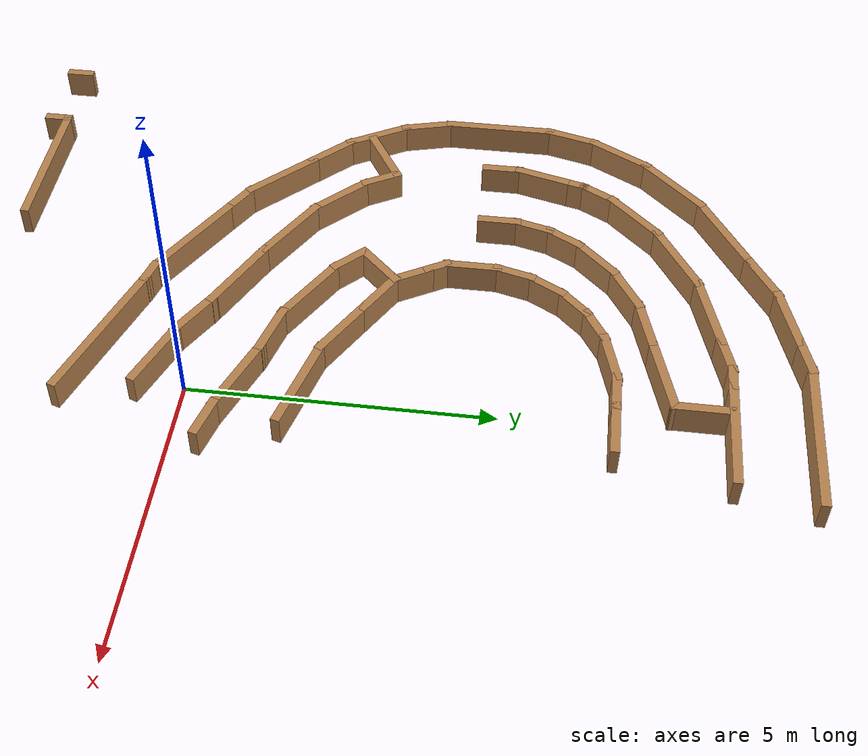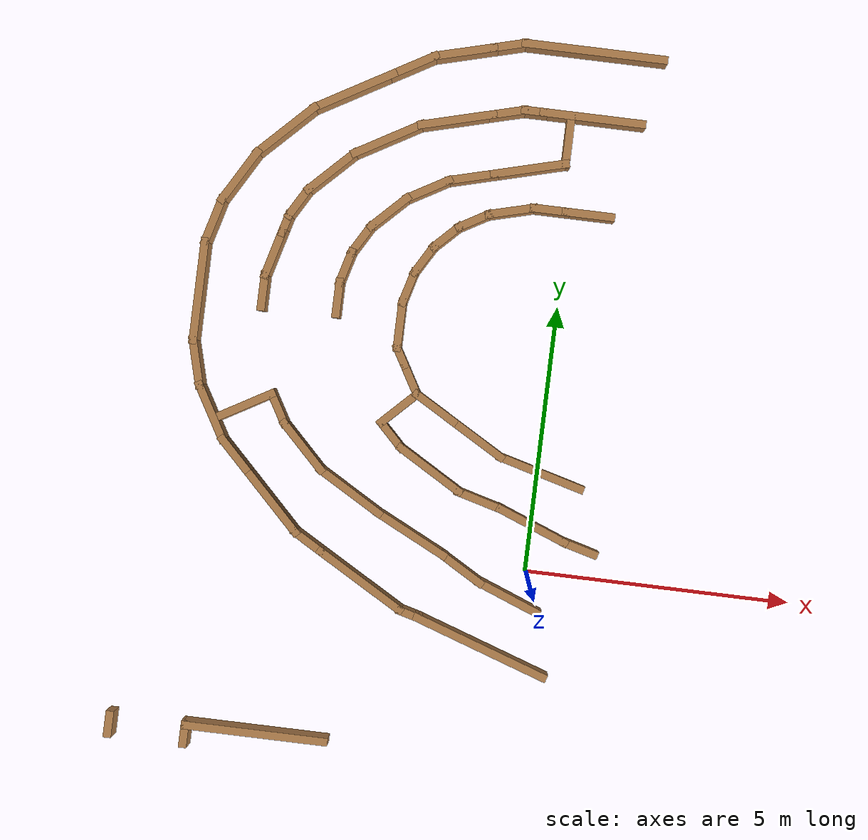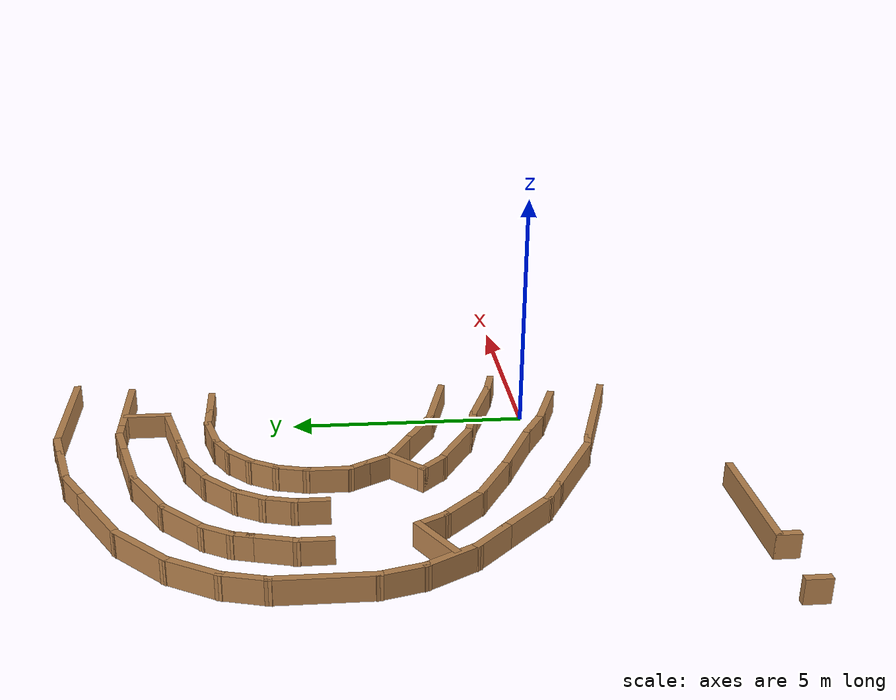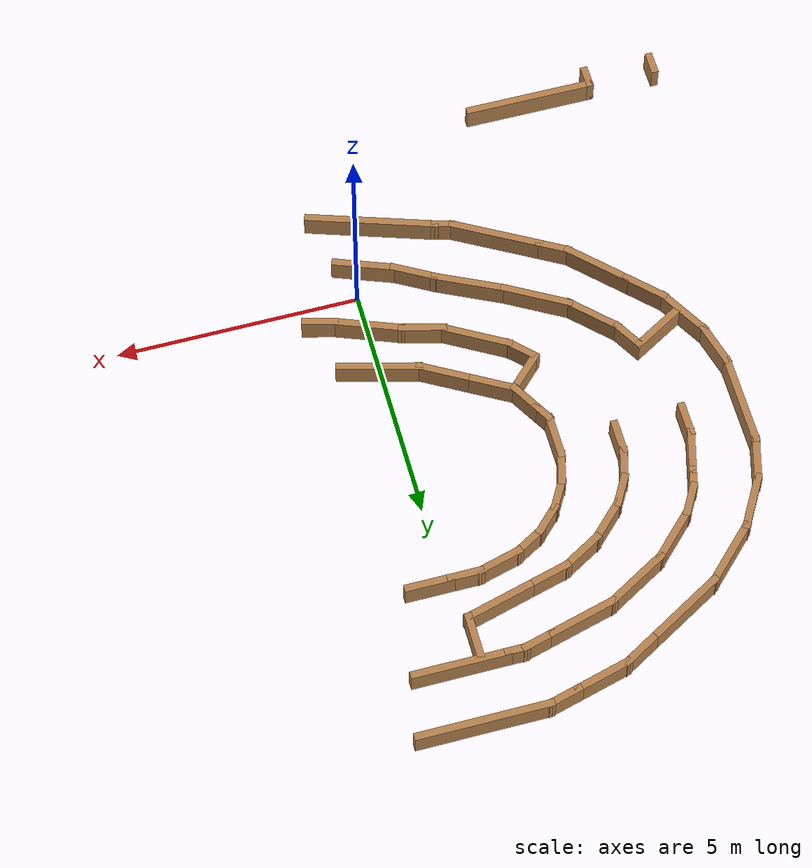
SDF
<sdf version="1.6">
 <model name="maze-S">
  <pose>0.044345 -0.028084 0 0 -0 0</pose>
  <link name="Wall_176">
   <collision name="Wall_176_Collision">
    <geometry><box><size>2 0.15 0.5</size></box></geometry>
    <pose>0 0 0.25 0 -0 0</pose>
   </collision>
   <visual name="Wall_176_Visual">
    <pose>0 0 0.25 0 -0 0</pose>
    <geometry><box><size>2 0.15 0.5</size></box></geometry>
    <material>
     <script><uri>file://media/materials/scripts/gazebo.material</uri><name>Gazebo/Wood</name></script>
     <ambient>1 1 1 1</ambient>
    </material>
    <meta><layer>0</layer></meta>
   </visual>
   <pose>0.164949 8.6015 0 0 -0 3.14159</pose>
  </link>
  <link name="Wall_177">
   <collision name="Wall_177_Collision">
    <geometry><box><size>0.5 0.15 0.5</size></box></geometry>
    <pose>0 0 0.25 0 -0 0</pose>
   </collision>
   <visual name="Wall_177_Visual">
    <pose>0 0 0.25 0 -0 0</pose>
    <geometry><box><size>0.5 0.15 0.5</size></box></geometry>
    <material>
     <script><uri>file://media/materials/scripts/gazebo.material</uri><name>Gazebo/Wood</name></script>
     <ambient>1 1 1 1</ambient>
    </material>
    <meta><layer>0</layer></meta>
   </visual>
   <pose>-0.935051 8.6015 0 0 -0 3.14159</pose>
  </link>
  <link name="Wall_178">
   <collision name="Wall_178_Collision">
    <geometry><box><size>0.75 0.15 0.5</size></box></geometry>
    <pose>0 0 0.25 0 -0 0</pose>
   </collision>
   <visual name="Wall_178_Visual">
    <pose>0 0 0.25 0 -0 0</pose>
    <geometry><box><size>0.75 0.15 0.5</size></box></geometry>
    <material>
     <script><uri>file://media/materials/scripts/gazebo.material</uri><name>Gazebo/Wood</name></script>
     <ambient>1 1 1 1</ambient>
    </material>
    <meta><layer>0</layer></meta>
   </visual>
   <pose>-1.39983 8.52386 0 0 -0 -2.87979</pose>
  </link>
  <link name="Wall_179">
   <collision name="Wall_179_Collision">
    <geometry><box><size>1.5 0.15 0.5</size></box></geometry>
    <pose>0 0 0.25 0 -0 0</pose>
   </collision>
   <visual name="Wall_179_Visual">
    <pose>0 0 0.25 0 -0 0</pose>
    <geometry><box><size>1.5 0.15 0.5</size></box></geometry>
    <material>
     <script><uri>file://media/materials/scripts/gazebo.material</uri><name>Gazebo/Wood</name></script>
     <ambient>1 1 1 1</ambient>
    </material>
    <meta><layer>0</layer></meta>
   </visual>
   <pose>-2.34161 8.27151 0 0 -0 -2.87979</pose>
  </link>
  <link name="Wall_180">
   <collision name="Wall_180_Collision">
    <geometry><box><size>1.5 0.15 0.5</size></box></geometry>
    <pose>0 0 0.25 0 -0 0</pose>
   </collision>
   <visual name="Wall_180_Visual">
    <pose>0 0 0.25 0 -0 0</pose>
    <geometry><box><size>1.5 0.15 0.5</size></box></geometry>
    <material>
     <script><uri>file://media/materials/scripts/gazebo.material</uri><name>Gazebo/Wood</name></script>
     <ambient>1 1 1 1</ambient>
    </material>
    <meta><layer>0</layer></meta>
   </visual>
   <pose>-3.57817 7.75931 0 0 -0 -2.61799</pose>
  </link>
  <link name="Wall_181">
   <collision name="Wall_181_Collision">
    <geometry><box><size>1.25 0.15 0.5</size></box></geometry>
    <pose>0 0 0.25 0 -0 0</pose>
   </collision>
   <visual name="Wall_181_Visual">
    <pose>0 0 0.25 0 -0 0</pose>
    <geometry><box><size>1.25 0.15 0.5</size></box></geometry>
    <material>
     <script><uri>file://media/materials/scripts/gazebo.material</uri><name>Gazebo/Wood</name></script>
     <ambient>1 1 1 1</ambient>
    </material>
    <meta><layer>0</layer></meta>
   </visual>
   <pose>-4.55165 7.0329 0 0 -0 -2.35619</pose>
  </link>
  <link name="Wall_182">
   <collision name="Wall_182_Collision">
    <geometry><box><size>0.75 0.15 0.5</size></box></geometry>
    <pose>0 0 0.25 0 -0 0</pose>
   </collision>
   <visual name="Wall_182_Visual">
    <pose>0 0 0.25 0 -0 0</pose>
    <geometry><box><size>0.75 0.15 0.5</size></box></geometry>
    <material>
     <script><uri>file://media/materials/scripts/gazebo.material</uri><name>Gazebo/Wood</name></script>
     <ambient>1 1 1 1</ambient>
    </material>
    <meta><layer>0</layer></meta>
   </visual>
   <pose>-5.09056 6.38418 0 0 -0 -2.0944</pose>
  </link>
  <link name="Wall_183">
   <collision name="Wall_183_Collision">
    <geometry><box><size>0.5 0.15 0.5</size></box></geometry>
    <pose>0 0 0.25 0 -0 0</pose>
   </collision>
   <visual name="Wall_183_Visual">
    <pose>0 0 0.25 0 -0 0</pose>
    <geometry><box><size>0.5 0.15 0.5</size></box></geometry>
    <material>
     <script><uri>file://media/materials/scripts/gazebo.material</uri><name>Gazebo/Wood</name></script>
     <ambient>1 1 1 1</ambient>
    </material>
    <meta><layer>0</layer></meta>
   </visual>
   <pose>-5.28585 5.95533 0 0 -0 -1.8326</pose>
  </link>
  <link name="Wall_184">
   <collision name="Wall_184_Collision">
    <geometry><box><size>1 0.15 0.5</size></box></geometry>
    <pose>0 0 0.25 0 -0 0</pose>
   </collision>
   <visual name="Wall_184_Visual">
    <pose>0 0 0.25 0 -0 0</pose>
    <geometry><box><size>1 0.15 0.5</size></box></geometry>
    <material>
     <script><uri>file://media/materials/scripts/gazebo.material</uri><name>Gazebo/Wood</name></script>
     <ambient>1 1 1 1</ambient>
    </material>
    <meta><layer>0</layer></meta>
   </visual>
   <pose>-5.44114 5.37578 0 0 -0 -1.8326</pose>
  </link>
  <link name="Wall_185">
   <collision name="Wall_185_Collision">
    <geometry><box><size>0.75 0.15 0.5</size></box></geometry>
    <pose>0 0 0.25 0 -0 0</pose>
   </collision>
   <visual name="Wall_185_Visual">
    <pose>0 0 0.25 0 -0 0</pose>
    <geometry><box><size>0.75 0.15 0.5</size></box></geometry>
    <material>
     <script><uri>file://media/materials/scripts/gazebo.material</uri><name>Gazebo/Wood</name></script>
     <ambient>1 1 1 1</ambient>
    </material>
    <meta><layer>0</layer></meta>
   </visual>
   <pose>-5.55114 4.66526 0 0 -0 -1.5708</pose>
  </link>
  <link name="Wall_187">
   <collision name="Wall_187_Collision">
    <geometry><box><size>0.75 0.15 0.5</size></box></geometry>
    <pose>0 0 0.25 0 -0 0</pose>
   </collision>
   <visual name="Wall_187_Visual">
    <pose>0 0 0.25 0 -0 0</pose>
    <geometry><box><size>0.75 0.15 0.5</size></box></geometry>
    <material>
     <script><uri>file://media/materials/scripts/gazebo.material</uri><name>Gazebo/Wood</name></script>
     <ambient>1 1 1 1</ambient>
    </material>
    <meta><layer>0</layer></meta>
   </visual>
   <pose>-4.15063 4.7033 0 0 -0 1.5708</pose>
  </link>
  <link name="Wall_188">
   <collision name="Wall_188_Collision">
    <geometry><box><size>0.75 0.15 0.5</size></box></geometry>
    <pose>0 0 0.25 0 -0 0</pose>
   </collision>
   <visual name="Wall_188_Visual">
    <pose>0 0 0.25 0 -0 0</pose>
    <geometry><box><size>0.75 0.15 0.5</size></box></geometry>
    <material>
     <script><uri>file://media/materials/scripts/gazebo.material</uri><name>Gazebo/Wood</name></script>
     <ambient>1 1 1 1</ambient>
    </material>
    <meta><layer>0</layer></meta>
   </visual>
   <pose>-4.07298 5.29308 0 0 -0 1.309</pose>
  </link>
  <link name="Wall_189">
   <collision name="Wall_189_Collision">
    <geometry><box><size>0.75 0.15 0.5</size></box></geometry>
    <pose>0 0 0.25 0 -0 0</pose>
   </collision>
   <visual name="Wall_189_Visual">
    <pose>0 0 0.25 0 -0 0</pose>
    <geometry><box><size>0.75 0.15 0.5</size></box></geometry>
    <material>
     <script><uri>file://media/materials/scripts/gazebo.material</uri><name>Gazebo/Wood</name></script>
     <ambient>1 1 1 1</ambient>
    </material>
    <meta><layer>0</layer></meta>
   </visual>
   <pose>-3.84534 5.84266 0 0 -0 1.0472</pose>
  </link>
  <link name="Wall_190">
   <collision name="Wall_190_Collision">
    <geometry><box><size>1 0.15 0.5</size></box></geometry>
    <pose>0 0 0.25 0 -0 0</pose>
   </collision>
   <visual name="Wall_190_Visual">
    <pose>0 0 0.25 0 -0 0</pose>
    <geometry><box><size>1 0.15 0.5</size></box></geometry>
    <material>
     <script><uri>file://media/materials/scripts/gazebo.material</uri><name>Gazebo/Wood</name></script>
     <ambient>1 1 1 1</ambient>
    </material>
    <meta><layer>0</layer></meta>
   </visual>
   <pose>-3.39482 6.40299 0 0 -0 0.785398</pose>
  </link>
  <link name="Wall_191">
   <collision name="Wall_191_Collision">
    <geometry><box><size>1 0.15 0.5</size></box></geometry>
    <pose>0 0 0.25 0 -0 0</pose>
   </collision>
   <visual name="Wall_191_Visual">
    <pose>0 0 0.25 0 -0 0</pose>
    <geometry><box><size>1 0.15 0.5</size></box></geometry>
    <material>
     <script><uri>file://media/materials/scripts/gazebo.material</uri><name>Gazebo/Wood</name></script>
     <ambient>1 1 1 1</ambient>
    </material>
    <meta><layer>0</layer></meta>
   </visual>
   <pose>-2.72623 6.91601 0 0 -0 0.523599</pose>
  </link>
  <link name="Wall_192">
   <collision name="Wall_192_Collision">
    <geometry><box><size>1 0.15 0.5</size></box></geometry>
    <pose>0 0 0.25 0 -0 0</pose>
   </collision>
   <visual name="Wall_192_Visual">
    <pose>0 0 0.25 0 -0 0</pose>
    <geometry><box><size>1 0.15 0.5</size></box></geometry>
    <material>
     <script><uri>file://media/materials/scripts/gazebo.material</uri><name>Gazebo/Wood</name></script>
     <ambient>1 1 1 1</ambient>
    </material>
    <meta><layer>0</layer></meta>
   </visual>
   <pose>-1.94765 7.23851 0 0 -0 0.261799</pose>
  </link>
  <link name="Wall_193">
   <collision name="Wall_193_Collision">
    <geometry><box><size>1.5 0.15 0.5</size></box></geometry>
    <pose>0 0 0.25 0 -0 0</pose>
   </collision>
   <visual name="Wall_193_Visual">
    <pose>0 0 0.25 0 -0 0</pose>
    <geometry><box><size>1.5 0.15 0.5</size></box></geometry>
    <material>
     <script><uri>file://media/materials/scripts/gazebo.material</uri><name>Gazebo/Wood</name></script>
     <ambient>1 1 1 1</ambient>
    </material>
    <meta><layer>0</layer></meta>
   </visual>
   <pose>-0.885137 7.52321 0 0 -0 0.261799</pose>
  </link>
  <link name="Wall_194">
   <collision name="Wall_194_Collision">
    <geometry><box><size>1 0.15 0.5</size></box></geometry>
    <pose>0 0 0.25 0 -0 0</pose>
   </collision>
   <visual name="Wall_194_Visual">
    <pose>0 0 0.25 0 -0 0</pose>
    <geometry><box><size>1 0.15 0.5</size></box></geometry>
    <material>
     <script><uri>file://media/materials/scripts/gazebo.material</uri><name>Gazebo/Wood</name></script>
     <ambient>1 1 1 1</ambient>
    </material>
    <meta><layer>0</layer></meta>
   </visual>
   <pose>-0.233137 8.12291 0 0 -0 1.5708</pose>
  </link>
  <link name="Wall_216">
   <collision name="Wall_216_Collision">
    <geometry><box><size>1 0.15 0.5</size></box></geometry>
    <pose>0 0 0.25 0 -0 0</pose>
   </collision>
   <visual name="Wall_216_Visual">
    <pose>0 0 0.25 0 -0 0</pose>
    <geometry><box><size>1 0.15 0.5</size></box></geometry>
    <material>
     <script><uri>file://media/materials/scripts/gazebo.material</uri><name>Gazebo/Wood</name></script>
     <ambient>1 1 1 1</ambient>
    </material>
    <meta><layer>0</layer></meta>
   </visual>
   <pose>0.301645 6.80971 0 0 -0 3.14159</pose>
  </link>
  <link name="Wall_217">
   <collision name="Wall_217_Collision">
    <geometry><box><size>0.75 0.15 0.5</size></box></geometry>
    <pose>0 0 0.25 0 -0 0</pose>
   </collision>
   <visual name="Wall_217_Visual">
    <pose>0 0 0.25 0 -0 0</pose>
    <geometry><box><size>0.75 0.15 0.5</size></box></geometry>
    <material>
     <script><uri>file://media/materials/scripts/gazebo.material</uri><name>Gazebo/Wood</name></script>
     <ambient>1 1 1 1</ambient>
    </material>
    <meta><layer>0</layer></meta>
   </visual>
   <pose>-0.423355 6.80971 0 0 -0 3.14159</pose>
  </link>
  <link name="Wall_218">
   <collision name="Wall_218_Collision">
    <geometry><box><size>1 0.15 0.5</size></box></geometry>
    <pose>0 0 0.25 0 -0 0</pose>
   </collision>
   <visual name="Wall_218_Visual">
    <pose>0 0 0.25 0 -0 0</pose>
    <geometry><box><size>1 0.15 0.5</size></box></geometry>
    <material>
     <script><uri>file://media/materials/scripts/gazebo.material</uri><name>Gazebo/Wood</name></script>
     <ambient>1 1 1 1</ambient>
    </material>
    <meta><layer>0</layer></meta>
   </visual>
   <pose>-1.13387 6.69971 0 0 -0 -2.87979</pose>
  </link>
  <link name="Wall_219">
   <collision name="Wall_219_Collision">
    <geometry><box><size>0.75 0.15 0.5</size></box></geometry>
    <pose>0 0 0.25 0 -0 0</pose>
   </collision>
   <visual name="Wall_219_Visual">
    <pose>0 0 0.25 0 -0 0</pose>
    <geometry><box><size>0.75 0.15 0.5</size></box></geometry>
    <material>
     <script><uri>file://media/materials/scripts/gazebo.material</uri><name>Gazebo/Wood</name></script>
     <ambient>1 1 1 1</ambient>
    </material>
    <meta><layer>0</layer></meta>
   </visual>
   <pose>-1.8042 6.43971 0 0 -0 -2.61799</pose>
  </link>
  <link name="Wall_220">
   <collision name="Wall_220_Collision">
    <geometry><box><size>0.75 0.15 0.5</size></box></geometry>
    <pose>0 0 0.25 0 -0 0</pose>
   </collision>
   <visual name="Wall_220_Visual">
    <pose>0 0 0.25 0 -0 0</pose>
    <geometry><box><size>0.75 0.15 0.5</size></box></geometry>
    <material>
     <script><uri>file://media/materials/scripts/gazebo.material</uri><name>Gazebo/Wood</name></script>
     <ambient>1 1 1 1</ambient>
    </material>
    <meta><layer>0</layer></meta>
   </visual>
   <pose>-2.27614 6.07758 0 0 -0 -2.35619</pose>
  </link>
  <link name="Wall_221">
   <collision name="Wall_221_Collision">
    <geometry><box><size>0.75 0.15 0.5</size></box></geometry>
    <pose>0 0 0.25 0 -0 0</pose>
   </collision>
   <visual name="Wall_221_Visual">
    <pose>0 0 0.25 0 -0 0</pose>
    <geometry><box><size>0.75 0.15 0.5</size></box></geometry>
    <material>
     <script><uri>file://media/materials/scripts/gazebo.material</uri><name>Gazebo/Wood</name></script>
     <ambient>1 1 1 1</ambient>
    </material>
    <meta><layer>0</layer></meta>
   </visual>
   <pose>-2.63827 5.60564 0 0 -0 -2.0944</pose>
  </link>
  <link name="Wall_222">
   <collision name="Wall_222_Collision">
    <geometry><box><size>0.75 0.15 0.5</size></box></geometry>
    <pose>0 0 0.25 0 -0 0</pose>
   </collision>
   <visual name="Wall_222_Visual">
    <pose>0 0 0.25 0 -0 0</pose>
    <geometry><box><size>0.75 0.15 0.5</size></box></geometry>
    <material>
     <script><uri>file://media/materials/scripts/gazebo.material</uri><name>Gazebo/Wood</name></script>
     <ambient>1 1 1 1</ambient>
    </material>
    <meta><layer>0</layer></meta>
   </visual>
   <pose>-2.86592 5.05605 0 0 -0 -1.8326</pose>
  </link>
  <link name="Wall_223">
   <collision name="Wall_223_Collision">
    <geometry><box><size>1 0.15 0.5</size></box></geometry>
    <pose>0 0 0.25 0 -0 0</pose>
   </collision>
   <visual name="Wall_223_Visual">
    <pose>0 0 0.25 0 -0 0</pose>
    <geometry><box><size>1 0.15 0.5</size></box></geometry>
    <material>
     <script><uri>file://media/materials/scripts/gazebo.material</uri><name>Gazebo/Wood</name></script>
     <ambient>1 1 1 1</ambient>
    </material>
    <meta><layer>0</layer></meta>
   </visual>
   <pose>-2.94356 4.34128 0 0 -0 -1.5708</pose>
  </link>
  <link name="Wall_224">
   <collision name="Wall_224_Collision">
    <geometry><box><size>0.5 0.15 0.5</size></box></geometry>
    <pose>0 0 0.25 0 -0 0</pose>
   </collision>
   <visual name="Wall_224_Visual">
    <pose>0 0 0.25 0 -0 0</pose>
    <geometry><box><size>0.5 0.15 0.5</size></box></geometry>
    <material>
     <script><uri>file://media/materials/scripts/gazebo.material</uri><name>Gazebo/Wood</name></script>
     <ambient>1 1 1 1</ambient>
    </material>
    <meta><layer>0</layer></meta>
   </visual>
   <pose>-2.85606 3.76472 0 0 -0 -1.0472</pose>
  </link>
  <link name="Wall_225">
   <collision name="Wall_225_Collision">
    <geometry><box><size>0.75 0.15 0.5</size></box></geometry>
    <pose>0 0 0.25 0 -0 0</pose>
   </collision>
   <visual name="Wall_225_Visual">
    <pose>0 0 0.25 0 -0 0</pose>
    <geometry><box><size>0.75 0.15 0.5</size></box></geometry>
    <material>
     <script><uri>file://media/materials/scripts/gazebo.material</uri><name>Gazebo/Wood</name></script>
     <ambient>1 1 1 1</ambient>
    </material>
    <meta><layer>0</layer></meta>
   </visual>
   <pose>-2.61856 3.35336 0 0 -0 -1.0472</pose>
  </link>
  <link name="Wall_226">
   <collision name="Wall_226_Collision">
    <geometry><box><size>1 0.15 0.5</size></box></geometry>
    <pose>0 0 0.25 0 -0 0</pose>
   </collision>
   <visual name="Wall_226_Visual">
    <pose>0 0 0.25 0 -0 0</pose>
    <geometry><box><size>1 0.15 0.5</size></box></geometry>
    <material>
     <script><uri>file://media/materials/scripts/gazebo.material</uri><name>Gazebo/Wood</name></script>
     <ambient>1 1 1 1</ambient>
    </material>
    <meta><layer>0</layer></meta>
   </visual>
   <pose>-2.1005 2.88105 0 0 -0 -0.523599</pose>
  </link>
  <link name="Wall_227">
   <collision name="Wall_227_Collision">
    <geometry><box><size>1.25 0.15 0.5</size></box></geometry>
    <pose>0 0 0.25 0 -0 0</pose>
   </collision>
   <visual name="Wall_227_Visual">
    <pose>0 0 0.25 0 -0 0</pose>
    <geometry><box><size>1.25 0.15 0.5</size></box></geometry>
    <material>
     <script><uri>file://media/materials/scripts/gazebo.material</uri><name>Gazebo/Wood</name></script>
     <ambient>1 1 1 1</ambient>
    </material>
    <meta><layer>0</layer></meta>
   </visual>
   <pose>-1.25613 2.39355 0 0 -0 -0.523599</pose>
  </link>
  <link name="Wall_228">
   <collision name="Wall_228_Collision">
    <geometry><box><size>1.75 0.15 0.5</size></box></geometry>
    <pose>0 0 0.25 0 -0 0</pose>
   </collision>
   <visual name="Wall_228_Visual">
    <pose>0 0 0.25 0 -0 0</pose>
    <geometry><box><size>1.75 0.15 0.5</size></box></geometry>
    <material>
     <script><uri>file://media/materials/scripts/gazebo.material</uri><name>Gazebo/Wood</name></script>
     <ambient>1 1 1 1</ambient>
    </material>
    <meta><layer>0</layer></meta>
   </visual>
   <pose>-0.007072 1.9115 0 0 -0 -0.261799</pose>
  </link>
  <link name="Wall_257">
   <collision name="Wall_257_Collision">
    <geometry><box><size>0.5 0.15 0.5</size></box></geometry>
    <pose>0 0 0.25 0 -0 0</pose>
   </collision>
   <visual name="Wall_257_Visual">
    <pose>0 0 0.25 0 -0 0</pose>
    <geometry><box><size>0.5 0.15 0.5</size></box></geometry>
    <material>
     <script><uri>file://media/materials/scripts/gazebo.material</uri><name>Gazebo/Wood</name></script>
     <ambient>1 1 1 1</ambient>
    </material>
    <meta><layer>0</layer></meta>
   </visual>
   <pose>-7.43094 -3.70653 0 0 -0 1.5708</pose>
  </link>
  <link name="Wall_259">
   <collision name="Wall_259_Collision">
    <geometry><box><size>0.5 0.15 0.5</size></box></geometry>
    <pose>0 0 0.25 0 -0 0</pose>
   </collision>
   <visual name="Wall_259_Visual">
    <pose>0 0 0.25 0 -0 0</pose>
    <geometry><box><size>0.5 0.15 0.5</size></box></geometry>
    <material>
     <script><uri>file://media/materials/scripts/gazebo.material</uri><name>Gazebo/Wood</name></script>
     <ambient>1 1 1 1</ambient>
    </material>
    <meta><layer>0</layer></meta>
   </visual>
   <pose>-6.01442 -3.72415 0 0 -0 -1.5708</pose>
  </link>
  <link name="Wall_285">
   <collision name="Wall_285_Collision">
    <geometry><box><size>2.75 0.15 0.5</size></box></geometry>
    <pose>0 0 0.25 0 -0 0</pose>
   </collision>
   <visual name="Wall_285_Visual">
    <pose>0 0 0.25 0 -0 0</pose>
    <geometry><box><size>2.75 0.15 0.5</size></box></geometry>
    <material>
     <script><uri>file://media/materials/scripts/gazebo.material</uri><name>Gazebo/Wood</name></script>
     <ambient>1 1 1 1</ambient>
    </material>
    <meta><layer>0</layer></meta>
   </visual>
   <pose>-4.71442 -3.54915 0 0 -0 0</pose>
  </link>
  <link name="Wall_313">
   <collision name="Wall_313_Collision">
    <geometry><box><size>2.74688 0.15 0.5</size></box></geometry>
    <pose>0 0 0.25 0 -0 0</pose>
   </collision>
   <visual name="Wall_313_Visual">
    <pose>0 0 0.25 0 -0 0</pose>
    <geometry><box><size>2.74688 0.15 0.5</size></box></geometry>
    <material>
     <script><uri>file://media/materials/scripts/gazebo.material</uri><name>Gazebo/Wood</name></script>
     <ambient>1 1 1 1</ambient>
    </material>
    <meta><layer>0</layer></meta>
   </visual>
   <pose>-0.730596 -1.45193 0 0 -0 2.81723</pose>
  </link>
  <link name="Wall_314">
   <collision name="Wall_314_Collision">
    <geometry><box><size>0.5 0.15 0.5</size></box></geometry>
    <pose>0 0 0.25 0 -0 0</pose>
   </collision>
   <visual name="Wall_314_Visual">
    <pose>0 0 0.25 0 -0 0</pose>
    <geometry><box><size>0.5 0.15 0.5</size></box></geometry>
    <material>
     <script><uri>file://media/materials/scripts/gazebo.material</uri><name>Gazebo/Wood</name></script>
     <ambient>1 1 1 1</ambient>
    </material>
    <meta><layer>0</layer></meta>
   </visual>
   <pose>-2.13037 -0.99282 0 0 -0 2.87979</pose>
  </link>
  <link name="Wall_315">
   <collision name="Wall_315_Collision">
    <geometry><box><size>1.97269 0.15 0.5</size></box></geometry>
    <pose>0 0 0.25 0 -0 0</pose>
   </collision>
   <visual name="Wall_315_Visual">
    <pose>0 0 0.25 0 -0 0</pose>
    <geometry><box><size>1.97269 0.15 0.5</size></box></geometry>
    <material>
     <script><uri>file://media/materials/scripts/gazebo.material</uri><name>Gazebo/Wood</name></script>
     <ambient>1 1 1 1</ambient>
    </material>
    <meta><layer>0</layer></meta>
   </visual>
   <pose>-3.10048 -0.485026 0 0 -0 2.62201</pose>
  </link>
  <link name="Wall_316">
   <collision name="Wall_316_Collision">
    <geometry><box><size>0.75 0.15 0.5</size></box></geometry>
    <pose>0 0 0.25 0 -0 0</pose>
   </collision>
   <visual name="Wall_316_Visual">
    <pose>0 0 0.25 0 -0 0</pose>
    <geometry><box><size>0.75 0.15 0.5</size></box></geometry>
    <material>
     <script><uri>file://media/materials/scripts/gazebo.material</uri><name>Gazebo/Wood</name></script>
     <ambient>1 1 1 1</ambient>
    </material>
    <meta><layer>0</layer></meta>
   </visual>
   <pose>-4.15136 0.117474 0 0 -0 2.61799</pose>
  </link>
  <link name="Wall_317">
   <collision name="Wall_317_Collision">
    <geometry><box><size>1.5 0.15 0.5</size></box></geometry>
    <pose>0 0 0.25 0 -0 0</pose>
   </collision>
   <visual name="Wall_317_Visual">
    <pose>0 0 0.25 0 -0 0</pose>
    <geometry><box><size>1.5 0.15 0.5</size></box></geometry>
    <material>
     <script><uri>file://media/materials/scripts/gazebo.material</uri><name>Gazebo/Wood</name></script>
     <ambient>1 1 1 1</ambient>
    </material>
    <meta><layer>0</layer></meta>
   </visual>
   <pose>-4.88846 0.744771 0 0 -0 2.35619</pose>
  </link>
  <link name="Wall_318">
   <collision name="Wall_318_Collision">
    <geometry><box><size>1 0.15 0.5</size></box></geometry>
    <pose>0 0 0.25 0 -0 0</pose>
   </collision>
   <visual name="Wall_318_Visual">
    <pose>0 0 0.25 0 -0 0</pose>
    <geometry><box><size>1 0.15 0.5</size></box></geometry>
    <material>
     <script><uri>file://media/materials/scripts/gazebo.material</uri><name>Gazebo/Wood</name></script>
     <ambient>1 1 1 1</ambient>
    </material>
    <meta><layer>0</layer></meta>
   </visual>
   <pose>-5.66628 1.52259 0 0 -0 2.35619</pose>
  </link>
  <link name="Wall_319">
   <collision name="Wall_319_Collision">
    <geometry><box><size>1.25 0.15 0.5</size></box></geometry>
    <pose>0 0 0.25 0 -0 0</pose>
   </collision>
   <visual name="Wall_319_Visual">
    <pose>0 0 0.25 0 -0 0</pose>
    <geometry><box><size>1.25 0.15 0.5</size></box></geometry>
    <material>
     <script><uri>file://media/materials/scripts/gazebo.material</uri><name>Gazebo/Wood</name></script>
     <ambient>1 1 1 1</ambient>
    </material>
    <meta><layer>0</layer></meta>
   </visual>
   <pose>-6.2418 2.29942 0 0 -0 2.0944</pose>
  </link>
  <link name="Wall_320">
   <collision name="Wall_320_Collision">
    <geometry><box><size>1 0.15 0.5</size></box></geometry>
    <pose>0 0 0.25 0 -0 0</pose>
   </collision>
   <visual name="Wall_320_Visual">
    <pose>0 0 0.25 0 -0 0</pose>
    <geometry><box><size>1 0.15 0.5</size></box></geometry>
    <material>
     <script><uri>file://media/materials/scripts/gazebo.material</uri><name>Gazebo/Wood</name></script>
     <ambient>1 1 1 1</ambient>
    </material>
    <meta><layer>0</layer></meta>
   </visual>
   <pose>-6.6268 3.18626 0 0 -0 1.8326</pose>
  </link>
  <link name="Wall_321">
   <collision name="Wall_321_Collision">
    <geometry><box><size>2 0.15 0.5</size></box></geometry>
    <pose>0 0 0.25 0 -0 0</pose>
   </collision>
   <visual name="Wall_321_Visual">
    <pose>0 0 0.25 0 -0 0</pose>
    <geometry><box><size>2 0.15 0.5</size></box></geometry>
    <material>
     <script><uri>file://media/materials/scripts/gazebo.material</uri><name>Gazebo/Wood</name></script>
     <ambient>1 1 1 1</ambient>
    </material>
    <meta><layer>0</layer></meta>
   </visual>
   <pose>-6.7368 4.52177 0 0 -0 1.5708</pose>
  </link>
  <link name="Wall_322">
   <collision name="Wall_322_Collision">
    <geometry><box><size>1 0.15 0.5</size></box></geometry>
    <pose>0 0 0.25 0 -0 0</pose>
   </collision>
   <visual name="Wall_322_Visual">
    <pose>0 0 0.25 0 -0 0</pose>
    <geometry><box><size>1 0.15 0.5</size></box></geometry>
    <material>
     <script><uri>file://media/materials/scripts/gazebo.material</uri><name>Gazebo/Wood</name></script>
     <ambient>1 1 1 1</ambient>
    </material>
    <meta><layer>0</layer></meta>
   </visual>
   <pose>-6.6268 5.85729 0 0 -0 1.309</pose>
  </link>
  <link name="Wall_323">
   <collision name="Wall_323_Collision">
    <geometry><box><size>1.25 0.15 0.5</size></box></geometry>
    <pose>0 0 0.25 0 -0 0</pose>
   </collision>
   <visual name="Wall_323_Visual">
    <pose>0 0 0.25 0 -0 0</pose>
    <geometry><box><size>1.25 0.15 0.5</size></box></geometry>
    <material>
     <script><uri>file://media/materials/scripts/gazebo.material</uri><name>Gazebo/Wood</name></script>
     <ambient>1 1 1 1</ambient>
    </material>
    <meta><layer>0</layer></meta>
   </visual>
   <pose>-6.2418 6.74412 0 0 -0 1.0472</pose>
  </link>
  <link name="Wall_324">
   <collision name="Wall_324_Collision">
    <geometry><box><size>1.5 0.15 0.5</size></box></geometry>
    <pose>0 0 0.25 0 -0 0</pose>
   </collision>
   <visual name="Wall_324_Visual">
    <pose>0 0 0.25 0 -0 0</pose>
    <geometry><box><size>1.5 0.15 0.5</size></box></geometry>
    <material>
     <script><uri>file://media/materials/scripts/gazebo.material</uri><name>Gazebo/Wood</name></script>
     <ambient>1 1 1 1</ambient>
    </material>
    <meta><layer>0</layer></meta>
   </visual>
   <pose>-5.4895 7.69773 0 0 -0 0.785398</pose>
  </link>
  <link name="Wall_325">
   <collision name="Wall_325_Collision">
    <geometry><box><size>1.75 0.15 0.5</size></box></geometry>
    <pose>0 0 0.25 0 -0 0</pose>
   </collision>
   <visual name="Wall_325_Visual">
    <pose>0 0 0.25 0 -0 0</pose>
    <geometry><box><size>1.75 0.15 0.5</size></box></geometry>
    <material>
     <script><uri>file://media/materials/scripts/gazebo.material</uri><name>Gazebo/Wood</name></script>
     <ambient>1 1 1 1</ambient>
    </material>
    <meta><layer>0</layer></meta>
   </visual>
   <pose>-4.31939 8.57503 0 0 -0 0.523599</pose>
  </link>
  <link name="Wall_326">
   <collision name="Wall_326_Collision">
    <geometry><box><size>1 0.15 0.5</size></box></geometry>
    <pose>0 0 0.25 0 -0 0</pose>
   </collision>
   <visual name="Wall_326_Visual">
    <pose>0 0 0.25 0 -0 0</pose>
    <geometry><box><size>1 0.15 0.5</size></box></geometry>
    <material>
     <script><uri>file://media/materials/scripts/gazebo.material</uri><name>Gazebo/Wood</name></script>
     <ambient>1 1 1 1</ambient>
    </material>
    <meta><layer>0</layer></meta>
   </visual>
   <pose>-3.2585 9.18753 0 0 -0 0.523599</pose>
  </link>
  <link name="Wall_327">
   <collision name="Wall_327_Collision">
    <geometry><box><size>1.25 0.15 0.5</size></box></geometry>
    <pose>0 0 0.25 0 -0 0</pose>
   </collision>
   <visual name="Wall_327_Visual">
    <pose>0 0 0.25 0 -0 0</pose>
    <geometry><box><size>1.25 0.15 0.5</size></box></geometry>
    <material>
     <script><uri>file://media/materials/scripts/gazebo.material</uri><name>Gazebo/Wood</name></script>
     <ambient>1 1 1 1</ambient>
    </material>
    <meta><layer>0</layer></meta>
   </visual>
   <pose>-2.35919 9.54238 0 0 -0 0.261799</pose>
  </link>
  <link name="Wall_328">
   <collision name="Wall_328_Collision">
    <geometry><box><size>0.75 0.15 0.5</size></box></geometry>
    <pose>0 0 0.25 0 -0 0</pose>
   </collision>
   <visual name="Wall_328_Visual">
    <pose>0 0 0.25 0 -0 0</pose>
    <geometry><box><size>0.75 0.15 0.5</size></box></geometry>
    <material>
     <script><uri>file://media/materials/scripts/gazebo.material</uri><name>Gazebo/Wood</name></script>
     <ambient>1 1 1 1</ambient>
    </material>
    <meta><layer>0</layer></meta>
   </visual>
   <pose>-1.53815 9.76238 0 0 -0 0.261799</pose>
  </link>
  <link name="Wall_329">
   <collision name="Wall_329_Collision">
    <geometry><box><size>2.75 0.15 0.5</size></box></geometry>
    <pose>0 0 0.25 0 -0 0</pose>
   </collision>
   <visual name="Wall_329_Visual">
    <pose>0 0 0.25 0 -0 0</pose>
    <geometry><box><size>2.75 0.15 0.5</size></box></geometry>
    <material>
     <script><uri>file://media/materials/scripts/gazebo.material</uri><name>Gazebo/Wood</name></script>
     <ambient>1 1 1 1</ambient>
    </material>
    <meta><layer>0</layer></meta>
   </visual>
   <pose>0.05163 9.84002 0 0 -0 0</pose>
  </link>
  <link name="Wall_340">
   <collision name="Wall_340_Collision">
    <geometry><box><size>1.25 0.15 0.5</size></box></geometry>
    <pose>0 0 0.25 0 -0 0</pose>
   </collision>
   <visual name="Wall_340_Visual">
    <pose>0 0 0.25 0 -0 0</pose>
    <geometry><box><size>1.25 0.15 0.5</size></box></geometry>
    <material>
     <script><uri>file://media/materials/scripts/gazebo.material</uri><name>Gazebo/Wood</name></script>
     <ambient>1 1 1 1</ambient>
    </material>
    <meta><layer>0</layer></meta>
   </visual>
   <pose>-5.63404 2.50376 0 0 -0 0.523599</pose>
  </link>
  <link name="Wall_341">
   <collision name="Wall_341_Collision">
    <geometry><box><size>0.75 0.15 0.5</size></box></geometry>
    <pose>0 0 0.25 0 -0 0</pose>
   </collision>
   <visual name="Wall_341_Visual">
    <pose>0 0 0.25 0 -0 0</pose>
    <geometry><box><size>0.75 0.15 0.5</size></box></geometry>
    <material>
     <script><uri>file://media/materials/scripts/gazebo.material</uri><name>Gazebo/Wood</name></script>
     <ambient>1 1 1 1</ambient>
    </material>
    <meta><layer>0</layer></meta>
   </visual>
   <pose>-5.00772 2.51895 0 0 -0 -1.0472</pose>
  </link>
  <link name="Wall_342">
   <collision name="Wall_342_Collision">
    <geometry><box><size>1.25 0.15 0.5</size></box></geometry>
    <pose>0 0 0.25 0 -0 0</pose>
   </collision>
   <visual name="Wall_342_Visual">
    <pose>0 0 0.25 0 -0 0</pose>
    <geometry><box><size>1.25 0.15 0.5</size></box></geometry>
    <material>
     <script><uri>file://media/materials/scripts/gazebo.material</uri><name>Gazebo/Wood</name></script>
     <ambient>1 1 1 1</ambient>
    </material>
    <meta><layer>0</layer></meta>
   </visual>
   <pose>-4.46882 1.87024 0 0 -0 -0.785398</pose>
  </link>
  <link name="Wall_343">
   <collision name="Wall_343_Collision">
    <geometry><box><size>1.5 0.15 0.5</size></box></geometry>
    <pose>0 0 0.25 0 -0 0</pose>
   </collision>
   <visual name="Wall_343_Visual">
    <pose>0 0 0.25 0 -0 0</pose>
    <geometry><box><size>1.5 0.15 0.5</size></box></geometry>
    <material>
     <script><uri>file://media/materials/scripts/gazebo.material</uri><name>Gazebo/Wood</name></script>
     <ambient>1 1 1 1</ambient>
    </material>
    <meta><layer>0</layer></meta>
   </visual>
   <pose>-3.49534 1.14383 0 0 -0 -0.523599</pose>
  </link>
  <link name="Wall_344">
   <collision name="Wall_344_Collision">
    <geometry><box><size>1.58554 0.15 0.5</size></box></geometry>
    <pose>0 0 0.25 0 -0 0</pose>
   </collision>
   <visual name="Wall_344_Visual">
    <pose>0 0 0.25 0 -0 0</pose>
    <geometry><box><size>1.58554 0.15 0.5</size></box></geometry>
    <material>
     <script><uri>file://media/materials/scripts/gazebo.material</uri><name>Gazebo/Wood</name></script>
     <ambient>1 1 1 1</ambient>
    </material>
    <meta><layer>0</layer></meta>
   </visual>
   <pose>-2.26672 0.489494 0 0 -0 -0.457175</pose>
  </link>
  <link name="Wall_345">
   <collision name="Wall_345_Collision">
    <geometry><box><size>1 0.15 0.5</size></box></geometry>
    <pose>0 0 0.25 0 -0 0</pose>
   </collision>
   <visual name="Wall_345_Visual">
    <pose>0 0 0.25 0 -0 0</pose>
    <geometry><box><size>1 0.15 0.5</size></box></geometry>
    <material>
     <script><uri>file://media/materials/scripts/gazebo.material</uri><name>Gazebo/Wood</name></script>
     <ambient>1 1 1 1</ambient>
    </material>
    <meta><layer>0</layer></meta>
   </visual>
   <pose>-1.24704 -0.047402 0 0 -0 -0.523599</pose>
  </link>
  <link name="Wall_346">
   <collision name="Wall_346_Collision">
    <geometry><box><size>1.34636 0.15 0.5</size></box></geometry>
    <pose>0 0 0.25 0 -0 0</pose>
   </collision>
   <visual name="Wall_346_Visual">
    <pose>0 0 0.25 0 -0 0</pose>
    <geometry><box><size>1.34636 0.15 0.5</size></box></geometry>
    <material>
     <script><uri>file://media/materials/scripts/gazebo.material</uri><name>Gazebo/Wood</name></script>
     <ambient>1 1 1 1</ambient>
    </material>
    <meta><layer>0</layer></meta>
   </visual>
   <pose>-0.328055 -0.466612 0 0 -0 -0.366348</pose>
  </link>
  <link name="Wall_356">
   <collision name="Wall_356_Collision">
    <geometry><box><size>1 0.15 0.5</size></box></geometry>
    <pose>0 0 0.25 0 -0 0</pose>
   </collision>
   <visual name="Wall_356_Visual">
    <pose>0 0 0.25 0 -0 0</pose>
    <geometry><box><size>1 0.15 0.5</size></box></geometry>
    <material>
     <script><uri>file://media/materials/scripts/gazebo.material</uri><name>Gazebo/Wood</name></script>
     <ambient>1 1 1 1</ambient>
    </material>
    <meta><layer>0</layer></meta>
   </visual>
   <pose>-2.76908 2.79303 0 0 -0 -2.35619</pose>
  </link>
  <link name="Wall_357">
   <collision name="Wall_357_Collision">
    <geometry><box><size>0.75 0.15 0.5</size></box></geometry>
    <pose>0 0 0.25 0 -0 0</pose>
   </collision>
   <visual name="Wall_357_Visual">
    <pose>0 0 0.25 0 -0 0</pose>
    <geometry><box><size>0.75 0.15 0.5</size></box></geometry>
    <material>
     <script><uri>file://media/materials/scripts/gazebo.material</uri><name>Gazebo/Wood</name></script>
     <ambient>1 1 1 1</ambient>
    </material>
    <meta><layer>0</layer></meta>
   </visual>
   <pose>-2.85747 2.28038 0 0 -0 -0.785398</pose>
  </link>
  <link name="Wall_358">
   <collision name="Wall_358_Collision">
    <geometry><box><size>1.5033 0.15 0.5</size></box></geometry>
    <pose>0 0 0.25 0 -0 0</pose>
   </collision>
   <visual name="Wall_358_Visual">
    <pose>0 0 0.25 0 -0 0</pose>
    <geometry><box><size>1.5033 0.15 0.5</size></box></geometry>
    <material>
     <script><uri>file://media/materials/scripts/gazebo.material</uri><name>Gazebo/Wood</name></script>
     <ambient>1 1 1 1</ambient>
    </material>
    <meta><layer>0</layer></meta>
   </visual>
   <pose>-2.06077 1.72746 0 0 -0 -0.527806</pose>
  </link>
  <link name="Wall_359">
   <collision name="Wall_359_Collision">
    <geometry><box><size>1 0.15 0.5</size></box></geometry>
    <pose>0 0 0.25 0 -0 0</pose>
   </collision>
   <visual name="Wall_359_Visual">
    <pose>0 0 0.25 0 -0 0</pose>
    <geometry><box><size>1 0.15 0.5</size></box></geometry>
    <material>
     <script><uri>file://media/materials/scripts/gazebo.material</uri><name>Gazebo/Wood</name></script>
     <ambient>1 1 1 1</ambient>
    </material>
    <meta><layer>0</layer></meta>
   </visual>
   <pose>-1.07226 1.2701 0 0 -0 -0.261799</pose>
  </link>
  <link name="Wall_360">
   <collision name="Wall_360_Collision">
    <geometry><box><size>1.48993 0.15 0.5</size></box></geometry>
    <pose>0 0 0.25 0 -0 0</pose>
   </collision>
   <visual name="Wall_360_Visual">
    <pose>0 0 0.25 0 -0 0</pose>
    <geometry><box><size>1.48993 0.15 0.5</size></box></geometry>
    <material>
     <script><uri>file://media/materials/scripts/gazebo.material</uri><name>Gazebo/Wood</name></script>
     <ambient>1 1 1 1</ambient>
    </material>
    <meta><layer>0</layer></meta>
   </visual>
   <pose>-0.036426 0.919619 0 0 -0 -0.367139</pose>
  </link>
  <link name="Wall_361">
   <collision name="Wall_361_Collision">
    <geometry><box><size>0.75 0.15 0.5</size></box></geometry>
    <pose>0 0 0.25 0 -0 0</pose>
   </collision>
   <visual name="Wall_361_Visual">
    <pose>0 0 0.25 0 -0 0</pose>
    <geometry><box><size>0.75 0.15 0.5</size></box></geometry>
    <material>
     <script><uri>file://media/materials/scripts/gazebo.material</uri><name>Gazebo/Wood</name></script>
     <ambient>1 1 1 1</ambient>
    </material>
    <meta><layer>0</layer></meta>
   </visual>
   <pose>0.87867 0.601492 0 0 -0 -0.261799</pose>
  </link>
  <static>1</static>
 </model>
</sdf>
